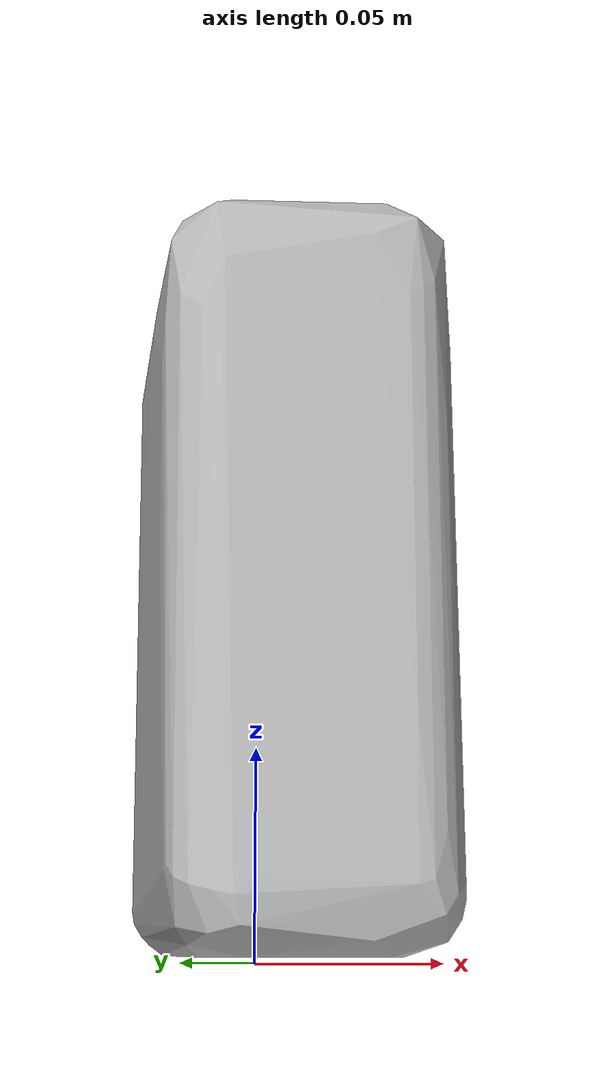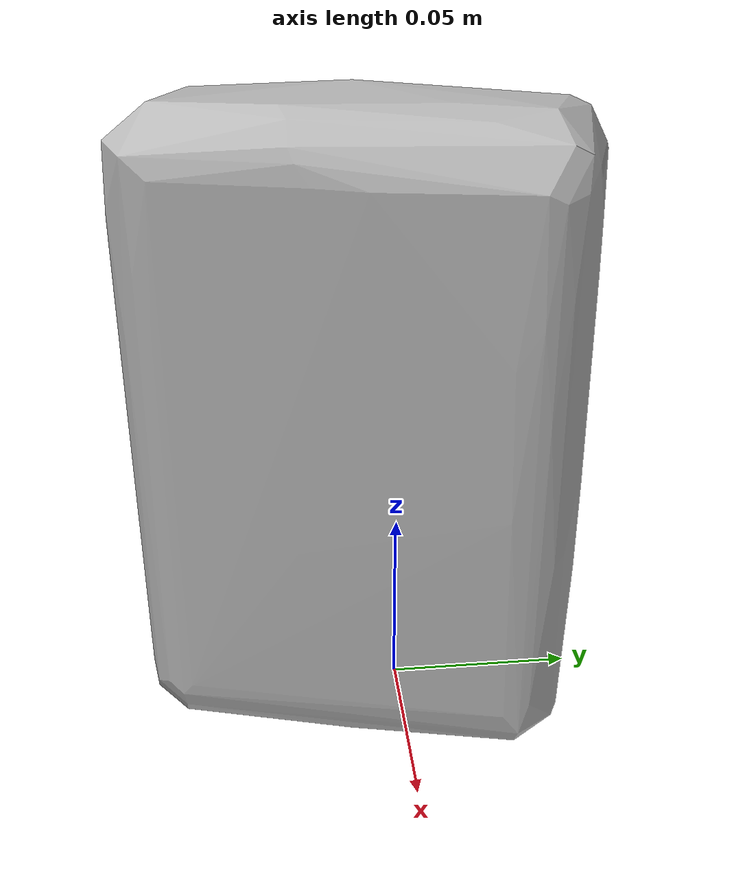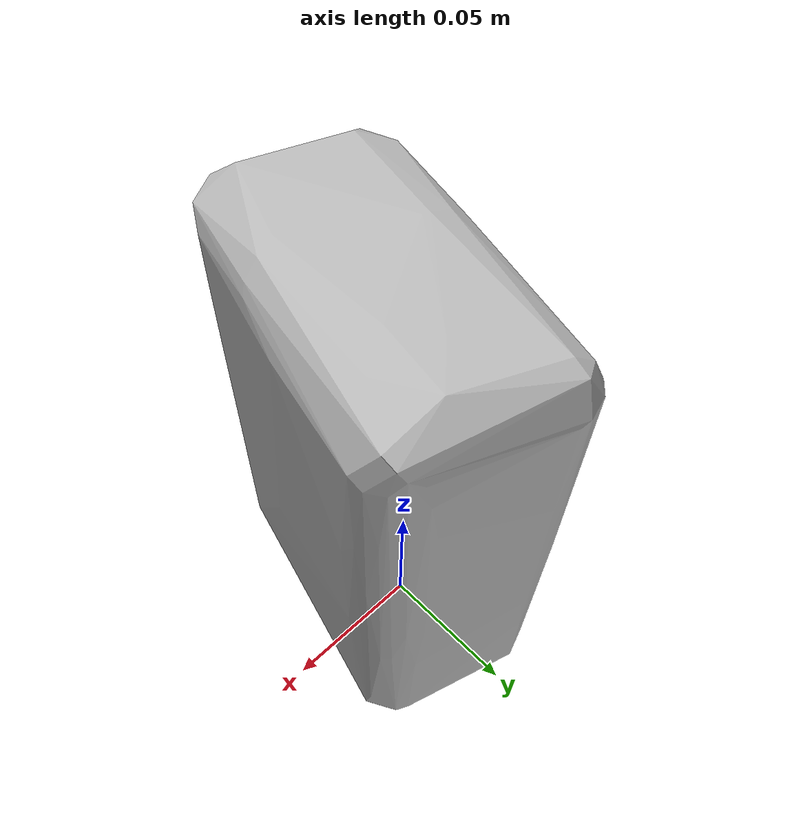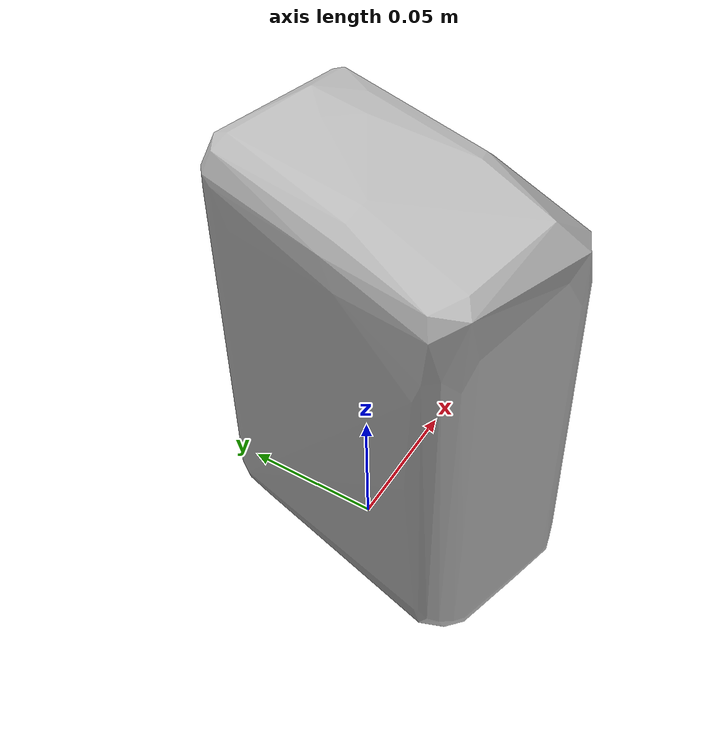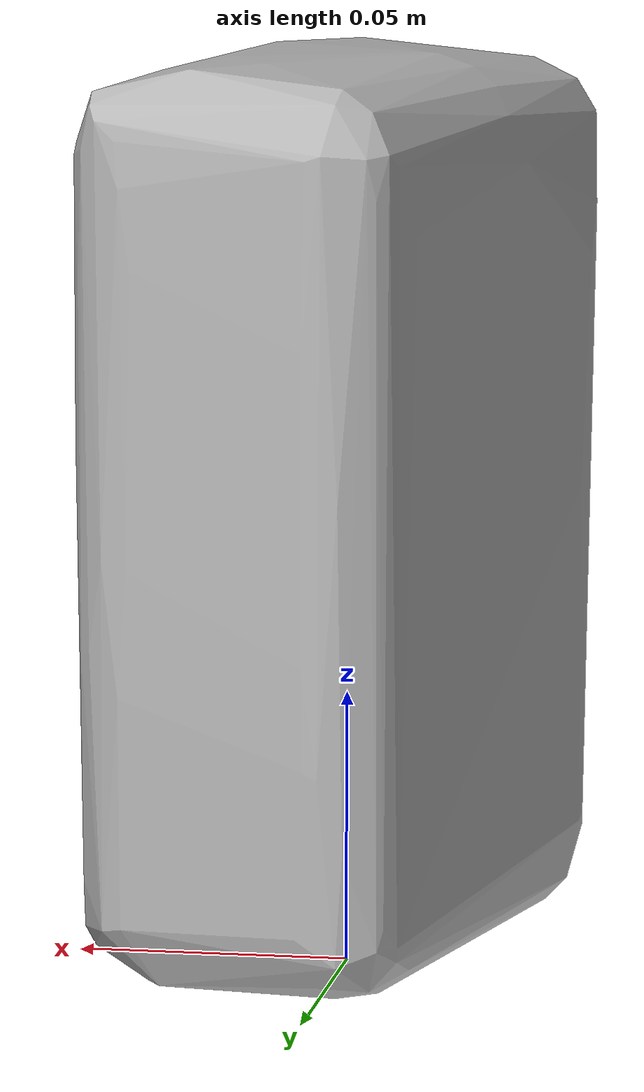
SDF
<?xml version='1.0'?>
<sdf version="1.4">
  <model name="pop_secret_butter">
    <static>false</static>
    <link name="link">
      <inertial>
        <pose>0.003525985073807963 -0.006683038482114216 0.08213807334417601 3.1182594063443143 -0.0003153493790860399 2.8801066953528123</pose>
        <mass>0.05654550744334678</mass>
        <inertia>
          <ixx>0.00036251662750435876</ixx>
          <ixy>-3.189735692760691e-20</ixy>
          <ixz>-7.7111432025060165e-22</ixz>
          <iyy>0.00027851615045391433</iyy>
          <iyz>-2.9464694116400677e-22</iyz>
          <izz>0.00016499125428126655</izz>
        </inertia>
      </inertial>
      <collision name="collision">
        <geometry>
          <mesh>
            <!-- Use a downsampled mesh for collisions -->
            <uri>model:///pop_secret_butter/pop_secret_butter_250_collision.obj</uri>
	        </mesh>
        </geometry>
        <surface>
      </surface>
      </collision>
      <visual name="visual">
        <geometry>
          <mesh>
            <uri>model:///pop_secret_butter/optimized_tsdf_texture_mapped_mesh.obj</uri>
	        </mesh>
        </geometry>
        <material>
          <script>
            <uri>model:///pop_secret_butter/pop_secret_butter.material</uri>
            <name>pop_secret_butter</name>
          </script>
        </material>
      </visual>
    </link>
  </model>
</sdf>
